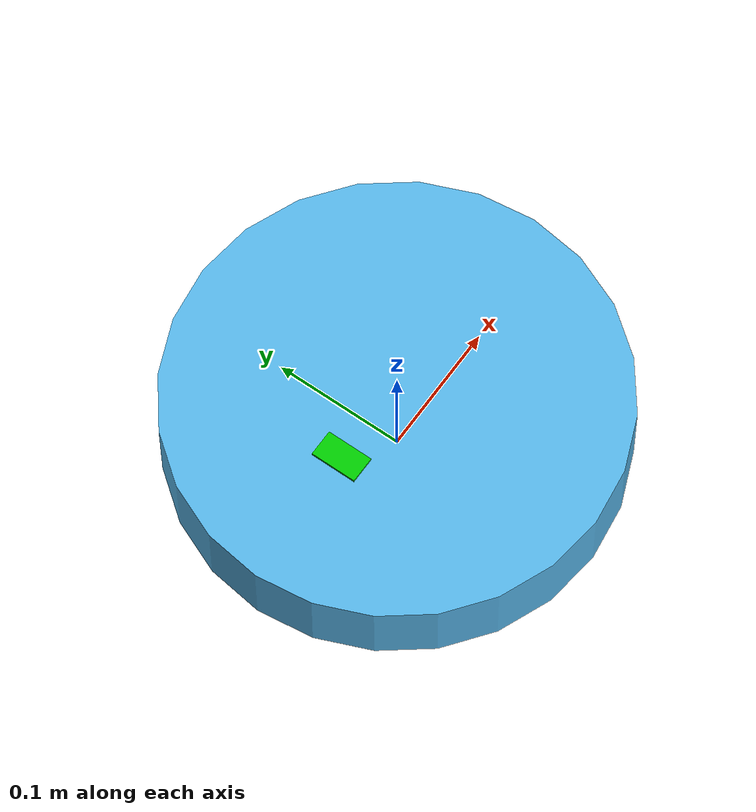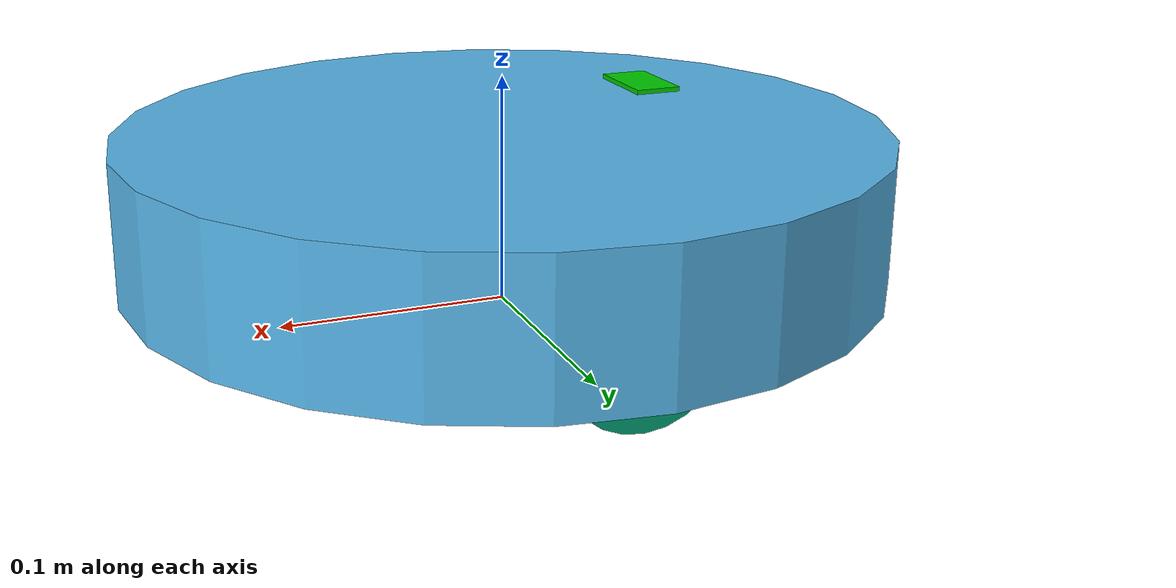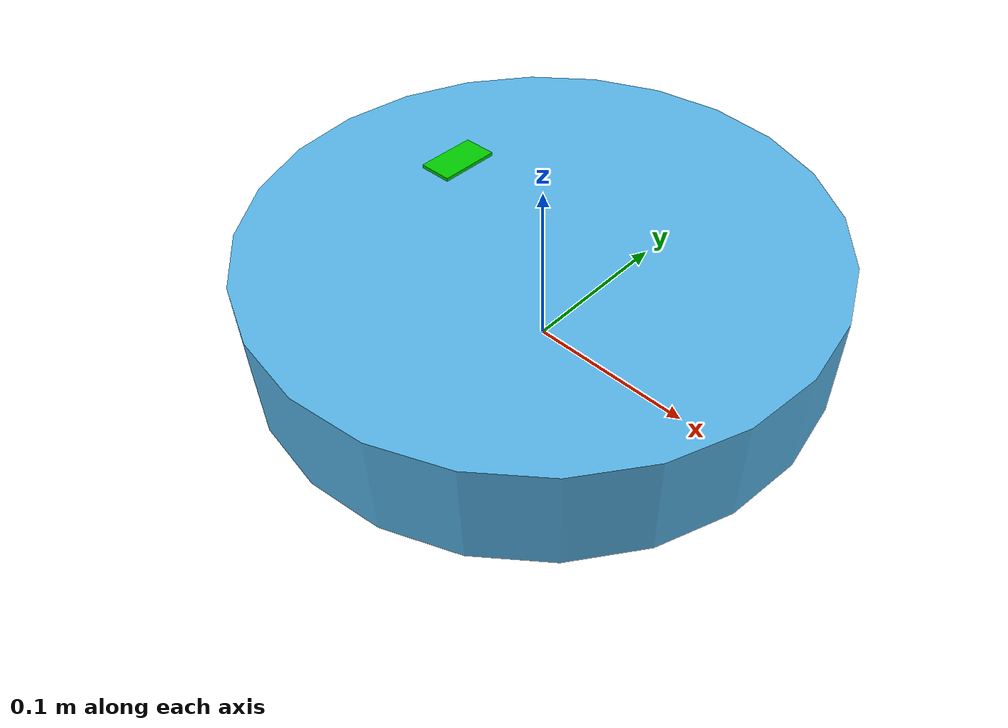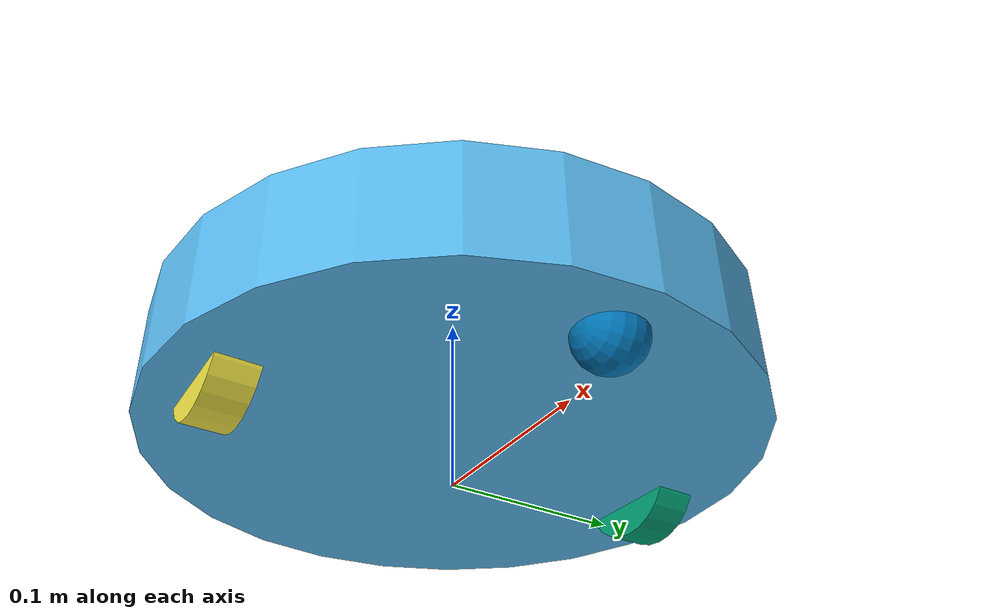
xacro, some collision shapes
<?xml version="1.0"?>

<robot name="qbo"
    xmlns:sensor="http://playerstage.sourceforge.net/gazebo/xmlschema/#sensor"
    xmlns:controller="http://playerstage.sourceforge.net/gazebo/xmlschema/#controller"
    xmlns:interface="http://playerstage.sourceforge.net/gazebo/xmlschema/#interface">

    <!-- Included URDF Files -->
    <include filename="$(find qbo_description)/atoms_description/urdf/qbo.xacro" />

    <qbo />
</robot>

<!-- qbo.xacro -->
<robot>
  <include filename="$(find qbo_description)/atoms_description/urdf/qbo_hardware.xacro" />
  <include filename="$(find qbo_description)/atoms_description/urdf/gazebo.urdf.xacro"/>

  <material name="Green">
    <color rgba="0.0 0.8 0.0 1.0"/>
  </material>

  <property name="M_PI" value="3.14159"/>
  <property name="SCALE" value="0.0254"/>
  <property name="base_x" value="0.33" />
  <property name="base_y" value="0.33" />

  <macro name="qbo">
  <!-- base_footprint is a fictitious link(frame) that is on the ground right below base_link origin, navigation stack depends on this frame -->

  <link name="base_footprint">
    <inertial>
      <mass value="0.0001" />
      <origin xyz="0 0 0" />
      <inertia ixx="0.0001" ixy="0.0" ixz="0.0"
              iyy="0.0001" iyz="0.0"
              izz="0.0001" />
    </inertial>

    <visual>
      <origin xyz="0 0 0" rpy="0 0 0" />
      <geometry>
        <box size="0.001 0.001 0.001" />
      </geometry>
      <material name="Green" />
    </visual>

    <collision>
      <origin xyz="0 0 0.017" rpy="0 0 0" />
      <geometry>
       <box size="0.001 0.001 0.001" />
      </geometry>
    </collision>
  </link>

  <link name="base_link">
    <inertial>
      <mass value="1" />
      <origin xyz="0 0 0.0308" />
      <inertia ixx="1.0" ixy="0.0" ixz="0.0"
        iyy="1.0" iyz="0.0" izz="1.0" />
    </inertial>

    <visual>
      <origin xyz=" 0 0 0.0308" rpy="0 0 4.7" />
      <geometry>
        <mesh filename="package://qbo_description/meshes/qbo.dae"/>
      </geometry>
    </visual>

    <collision>
      <origin xyz="0.0 0.0 0.0308" rpy="0 0 0" />
      <geometry>
        <cylinder length="0.0611632" radius="0.16495"/>
      </geometry>
    </collision>
  </link>

  <joint name="base_footprint_joint" type="fixed">
    <origin xyz="0 0 0.017" rpy="0 0 0" />
    <parent link="base_footprint"/>
    <child link="base_link" />
  </joint>

  <link name="left_wheel_link">
    <inertial>
      <origin xyz="0 0 0"/>
      <mass value="0.01" />
      <inertia ixx="1.0" ixy="0.0" ixz="0.0"
        iyy="1.0" iyz="0.0" izz="1.0" />
    </inertial>

    <visual>
      <origin xyz="0 0 0" rpy="0 1.5707 1.5707" />
      <geometry>
        <cylinder radius="0.033" length = "0.023"/>
      </geometry>
    </visual>

    <collision>
      <origin xyz="0 0 0" rpy="0 1.5707 1.5707" />
      <geometry>
        <cylinder radius="0.033" length = "0.023"/>
      </geometry>
    </collision>
  </link>

  <joint name="left_wheel_joint" type="continuous">
    <origin xyz="0 0.13 0.015" rpy="0 0 0"/>
    <parent link="base_link"/>
    <child link="left_wheel_link"/>
    <axis xyz="0 1 0"/>
  </joint>

  <link name="right_wheel_link">
    <inertial>
      <origin xyz="0 0 0"/>
      <mass value="0.01" />
      <inertia ixx="1.0" ixy="0.0" ixz="0.0"
        iyy="1.0" iyz="0.0" izz="1.0" />
    </inertial>

    <visual>
      <origin xyz="0 0 0" rpy="0 1.5707 1.5707" />
      <geometry>
        <cylinder radius="0.033" length = "0.023"/>
      </geometry>
    </visual>

    <collision>
      <origin xyz="0 0 0" rpy="0 1.5707 1.5707" />
      <geometry>
        <cylinder radius="0.033" length = "0.023"/>
      </geometry>
    </collision>
  </link>

  <joint name="right_wheel_joint" type="continuous">
    <origin xyz="0 -0.13 0.015" rpy="0 0 0"/>
    <parent link="base_link"/>
    <child link="right_wheel_link"/>
    <axis xyz="0 1 0"/>
  </joint>

  <link name="front_wheel_link">
    <inertial>
      <origin xyz="0 0 0" />
      <mass value="0.01" />
      <inertia ixx="1.0" ixy="0.0" ixz="0.0"
        iyy="1.0" iyz="0.0" izz="1.0" />
    </inertial>

    <visual>
      <origin xyz="0 0 0" rpy="0 1.5707 1.5707"/>
      <geometry>
        <sphere radius="0.018" />
      </geometry>
    </visual>

    <collision>
      <origin xyz="0 0 0" rpy="0 1.5707 1.5707" />
      <geometry>
        <sphere radius="0.018" />
      </geometry>
    </collision>
  </link>

  <joint name="front_castor_joint" type="continuous">
    <origin xyz="0.13 0 0.0" rpy="0 0 0"/>
    <parent link="base_link"/>
    <child link="front_wheel_link"/>
    <axis xyz="0 1 0"/>
  </joint>

  <joint name="gyro_joint" type="fixed">
    <origin xyz="0 0 0.04" rpy="0 0 0" />
    <parent link="base_link" />
    <child link="gyro_link" />
  </joint>

  <link name="gyro_link">
    <visual>
      <geometry>
        <box size="0.02 0.035 0.002" />
      </geometry>
      <material name="Green" />
    </visual>
    <inertial>
      <mass value="0.000001" />
      <origin xyz="0 0 0" />
      <inertia ixx="0.0001" ixy="0.0" ixz="0.0"
        iyy="0.0001" iyz="0.0"
        izz="0.0001" />
    </inertial>
  </link>

  <joint name="laser_joint" type="fixed">
    <origin xyz="-0.065 0 0.075" rpy="0 0 0" />
    <parent link="base_link" />
    <child link="laser" />
  </joint>

  <link name="laser">
    <visual>
      <geometry>
        <box size="0.02 0.035 0.002" />
      </geometry>
      <material name="Green" />
    </visual>
    <inertial>
      <mass value="0.000001" />
      <origin xyz="0 0 0" />
      <inertia ixx="0.0001" ixy="0.0" ixz="0.0"
        iyy="0.0001" iyz="0.0"
        izz="0.0001" />
    </inertial>
  </link>

  <joint name="plate_0_joint" type="fixed">
    <origin xyz="-0.04334 0  0.06775704" rpy="0 0 0" />
    <parent link="base_link"/>
    <child link="plate_0_link" />
  </joint>

  <link name="plate_0_link">
    <inertial>
      <mass value="0.01" />
      <origin xyz="0 0 0" />
      <inertia ixx="1.0" ixy="0.0" ixz="0.0"
        iyy="1.0" iyz="0.0"
        izz="1.0" />
    </inertial>

    <collision>
      <origin xyz="0.0 0.0 0.0" rpy="0 0 0" />
      <geometry>
        <box size="0.233502 0.314845 0.006401"/>
      </geometry>
    </collision>
  </link>

  <joint name="plate_1_joint" type="fixed">
    <origin xyz="0.04068 0 0.05715" rpy="0 0 0" />
    <parent link="plate_0_link"/>
    <child link="plate_1_link" />
  </joint>

  <link name="plate_1_link">
    <inertial>
      <mass value="0.1" />
      <origin xyz="0 0 0" />
      <inertia ixx="1.0" ixy="0.0" ixz="0.0"
        iyy="1.0" iyz="0.0"
        izz="1.0" />
    </inertial>

    <collision>
      <origin xyz="0.0 0.0 0.0" rpy="0 0 0" />
      <geometry>
        <box size="0.314856 0.314856 0.006401"/>
      </geometry>
    </collision>
  </link>

  <joint name="plate_2_joint" type="fixed">
    <origin xyz="0 0 0.0572008" rpy="0 0 0" />
    <parent link="plate_1_link"/>
    <child link="plate_2_link" />
  </joint>

  <link name="plate_2_link">
    <inertial>
      <mass value="0.01" />
      <origin xyz="0 0 0" />
      <inertia ixx="1.0" ixy="0.0" ixz="0.0"
        iyy="1.0" iyz="0.0"
        izz="1.0" />
    </inertial>

    <collision>
      <origin xyz="0.0 0.0 0.0" rpy="0 0 0" />
      <geometry>
        <box size="0.314856 0.314856 0.006401"/>
      </geometry>
    </collision>
  </link>

  <joint name="base_kinect_joint" type="fixed">
    <origin xyz="-0.0844382 0 0.1047496" rpy="0 0 0" />
    <parent link="plate_2_link" />
    <child link="kinect_link" />
  </joint>

  <link name="kinect_link">
    <inertial>
      <mass value="0.00001" />
      <origin xyz="0 0 0" />
      <inertia ixx="1.0" ixy="0.0" ixz="0.0"
        iyy="1.0" iyz="0.0"
        izz="1.0" />
    </inertial>

    <collision>
      <origin xyz="0.0 0.0 0.0" rpy="0 0 0" />
      <geometry>
        <box size="0.0730 .2760 0.0720"/>
      </geometry>
    </collision>

  </link>

  <joint name="kinect_depth_joint" type="fixed">
    <origin xyz="0 0.018 0" rpy="0 0 0" />
    <parent link="kinect_link" />
    <child link="kinect_depth_frame" />
  </joint>

  <link name="kinect_depth_frame">
    <inertial>
      <mass value="0.000001" />
      <origin xyz="0 0 0" />
      <inertia ixx="0.0001" ixy="0.0" ixz="0.0"
        iyy="0.0001" iyz="0.0"
        izz="0.0001" />
    </inertial>
  </link>

  <joint name="kinect_depth_optical_joint" type="fixed">
    <origin xyz="0 0 0" rpy="${-M_PI/2} 0 ${-M_PI/2}" />
    <parent link="kinect_depth_frame" />
    <child link="kinect_depth_optical_frame" />
  </joint>

  <link name="kinect_depth_optical_frame">
    <inertial>
      <mass value="0.000001" />
      <origin xyz="0 0 0" />
      <inertia ixx="0.0001" ixy="0.0" ixz="0.0"
        iyy="0.0001" iyz="0.0"
        izz="0.0001" />
    </inertial>
  </link>

  <joint name="kinect_rgb_joint" type="fixed">
    <origin xyz="0 -0.005 0" rpy="0 0 0" />
    <parent link="kinect_link" />
    <child link="kinect_rgb_frame" />
  </joint>

  <link name="kinect_rgb_frame">
    <inertial>
      <mass value="0.000001" />
      <origin xyz="0 0 0" />
      <inertia ixx="0.0001" ixy="0.0" ixz="0.0"
        iyy="0.0001" iyz="0.0"
        izz="0.0001" />
    </inertial>
  </link>

  <joint name="kinect_rgb_optical_joint" type="fixed">
    <origin xyz="0 0 0" rpy="${-M_PI/2} 0 ${-M_PI/2}" />
    <parent link="kinect_rgb_frame" />
    <child link="kinect_rgb_optical_frame" />
  </joint>

  <link name="kinect_rgb_optical_frame">
    <inertial>
      <mass value="0.000001" />
      <origin xyz="0 0 0" />
      <inertia ixx="0.0001" ixy="0.0" ixz="0.0"
        iyy="0.0001" iyz="0.0"
        izz="0.0001" />
    </inertial>
  </link>

  </macro>
</robot>
